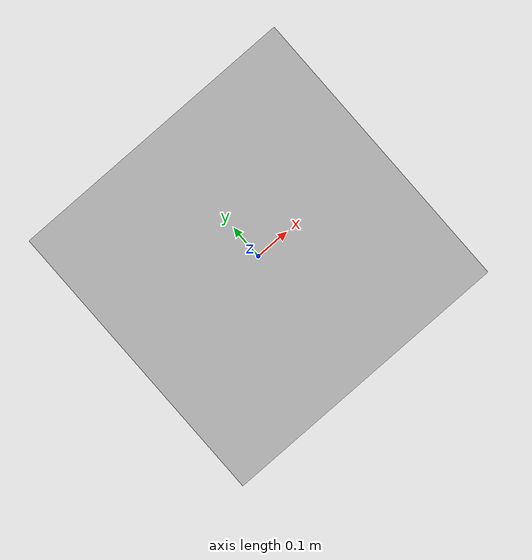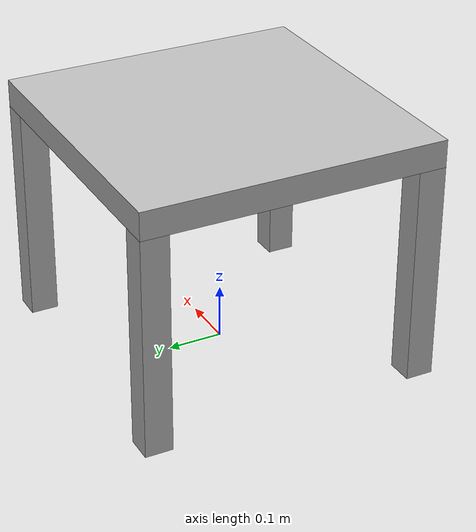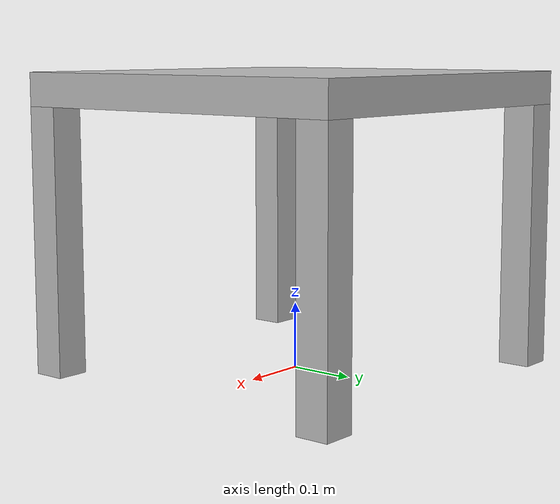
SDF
<?xml version="1.0" ?>
<sdf version="1.6">
  <model name="table_IKEA_LACK">
    <link name="top">
      <collision name="top">
        <geometry>
          <box>
            <size>0.55 0.55 0.05</size>
          </box>
        </geometry>
      </collision>
      <visual name="top">
        <geometry>
          <box>
            <size>0.55 0.55 0.05</size>
          </box>
        </geometry>
        <material>
          <ambient>0.75 0.75 0.75 1</ambient>
        </material>
      </visual>
      <pose>0 0 0.425 0 0 0</pose>
    </link>

    <link name="leg_1">
      <collision name="leg_1">
        <geometry>
          <box>
            <size>0.05 0.05 0.4</size>
          </box>
        </geometry>
      </collision>
      <visual name="leg_1">
        <geometry>
          <box>
            <size>0.05 0.05 0.4</size>
          </box>
        </geometry>
        <material>
          <ambient>0.75 0.75 0.75 1</ambient>
        </material>
      </visual>
      <pose>-0.25 -0.25 0.2 0 0 0</pose>
    </link>

    <link name="leg_2">
      <collision name="leg_2">
        <geometry>
          <box>
            <size>0.05 0.05 0.4</size>
          </box>
        </geometry>
      </collision>
      <visual name="leg_2">
        <geometry>
          <box>
            <size>0.05 0.05 0.4</size>
          </box>
        </geometry>
        <material>
          <ambient>0.75 0.75 0.75 1</ambient>
        </material>
      </visual>
      <pose>0.25 -0.25 0.2 0 0 0</pose>
    </link>

    <link name="leg_3">
      <collision name="leg_3">
        <geometry>
          <box>
            <size>0.05 0.05 0.4</size>
          </box>
        </geometry>
      </collision>
      <visual name="leg_3">
        <geometry>
          <box>
            <size>0.05 0.05 0.4</size>
          </box>
        </geometry>
        <material>
          <ambient>0.75 0.75 0.75 1</ambient>
        </material>
      </visual>
      <pose>-0.25 0.25 0.2 0 0 0</pose>
    </link>

    <link name="leg_4">
      <collision name="leg_4">
        <geometry>
          <box>
            <size>0.05 0.05 0.4</size>
          </box>
        </geometry>
      </collision>
      <visual name="leg_4">
        <geometry>
          <box>
            <size>0.05 0.05 0.4</size>
          </box>
        </geometry>
        <material>
          <ambient>0.75 0.75 0.75 1</ambient>
        </material>
      </visual>
      <pose>0.25 0.25 0.2 0 0 0</pose>
    </link>

    <joint name="top_leg_1_joint" type="fixed">
      <parent>top</parent>
      <child>leg_1</child>
    </joint>

    <joint name="top_leg_2_joint" type="fixed">
      <parent>top</parent>
      <child>leg_2</child>
    </joint>

    <joint name="top_leg_3_joint" type="fixed">
      <parent>top</parent>
      <child>leg_3</child>
    </joint>

    <joint name="top_leg_4_joint" type="fixed">
      <parent>top</parent>
      <child>leg_4</child>
    </joint>

    <link name="on_top_of">
      <virtual_volume name="on_top_of">
        <geometry>
          <box>
            <size>0.49 0.49 0.25</size>
          </box>
        </geometry>
        <pose>0.0 0.0 0.595 0 0 0</pose>
      </virtual_volume>
    </link>
    <link name="in_front_of">
      <virtual_volume name="in_front_of">
        <geometry>
          <box>
            <size>0.2 0.35 0.01</size>
          </box>
        </geometry>
        <pose>0.8 0.0 0.005 0 0 0</pose>
      </virtual_volume>
    </link>
    <link name="in_front_of2">
      <virtual_volume name="in_front_of2">
        <geometry>
          <box>
            <size>0.2 0.35 0.01</size>
          </box>
        </geometry>
        <pose>-0.8 0.0 0.005 0 0 0</pose>
      </virtual_volume>
    </link>
    <link name="grasp_pt_1">
     <virtual_volume name="grasp_pt_1">
        <geometry>
          <box>
           <size>0.05 0.05 0.05</size>
          </box>
        </geometry>
        <pose>0.275 0 0.425 0 0 0</pose>
       </virtual_volume>
     </link>
     <link name="grasp_pt_2">
      <virtual_volume name="grasp_pt_2">
         <geometry>
           <box>
            <size>0.05 0.05 0.05</size>
           </box>
        </geometry>
        <pose>0 0.275 0.425 0 0 0</pose>
      </virtual_volume>
     </link>
     <link name="grasp_pt_3">
        <virtual_volume name="grasp_pt_3">
            <geometry>
                <box>
                <size>0.05 0.05 0.05</size>
                </box>
            </geometry>
        <pose>-0.275 0 0.425 0 0 0</pose>
        </virtual_volume>
     </link>
     <link name="grasp_pt_4">
        <virtual_volume name="grasp_pt_4">
             <geometry>
                <box>
                <size>0.05 0.05 0.05</size>
                </box>
            </geometry>
            <pose>0 -0.275 0.425 0 0 0</pose>
        </virtual_volume>
     </link>
    <static>false</static>
  </model>
</sdf>
